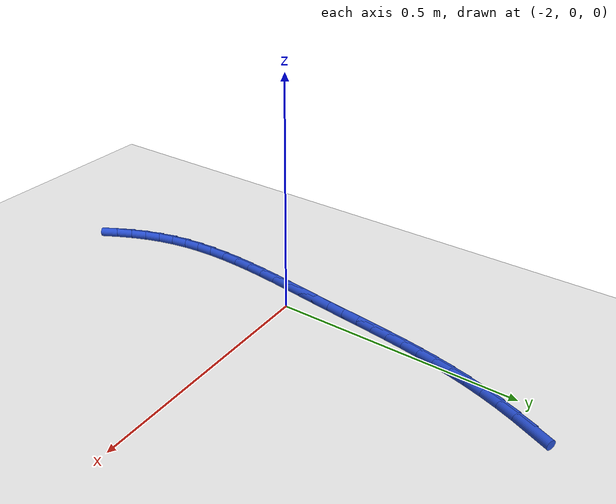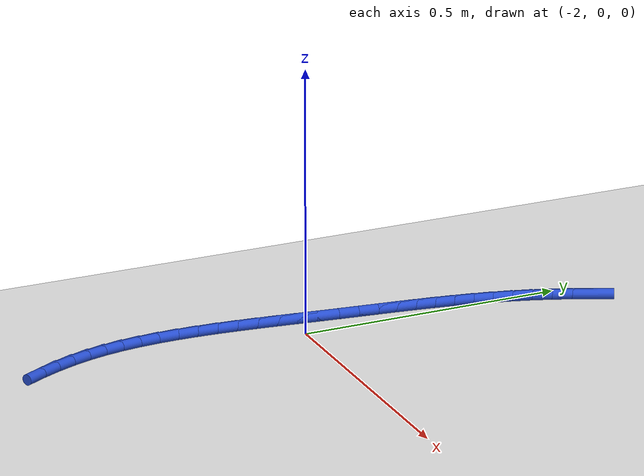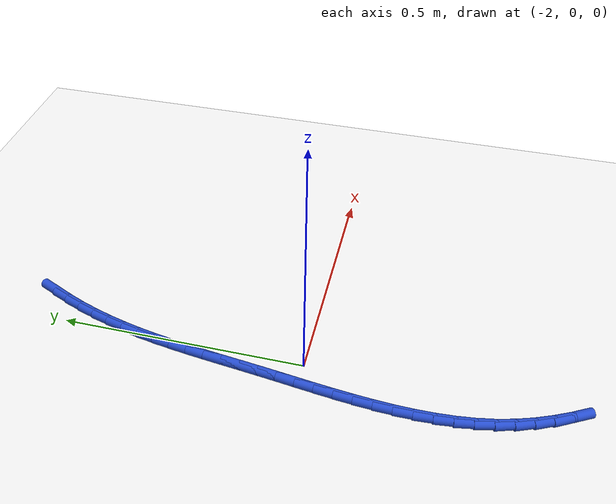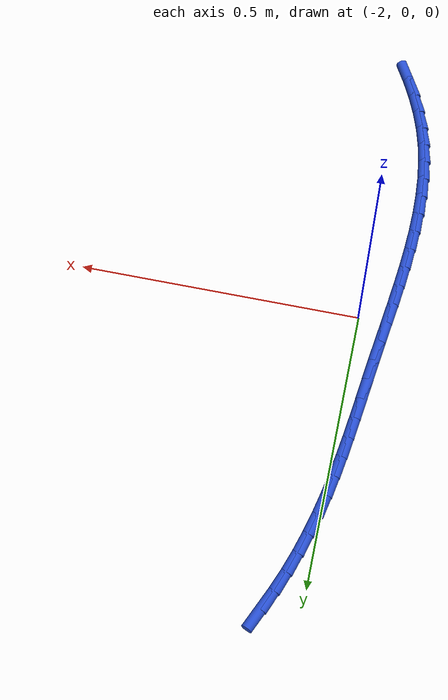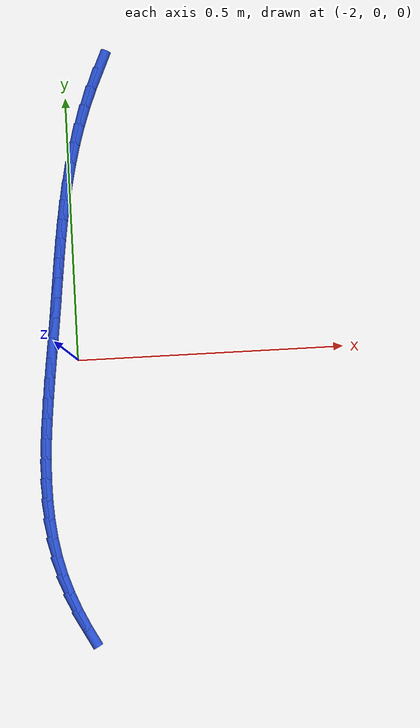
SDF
<sdf version="1.6">
 <world name="default">
  <model name="ground_plane">
   <static>1</static>
   <link name="link">
    <collision name="collision">
     <geometry><plane><normal>0 0 1</normal><size>100 100</size></plane></geometry>
     <surface><friction><ode><mu>100</mu><mu2>50</mu2></ode></friction></surface>
    </collision>
    <visual name="visual">
     <cast_shadows>0</cast_shadows>
     <geometry><plane><normal>0 0 1</normal><size>100 100</size></plane></geometry>
     <material>
      <script><uri>file://media/materials/scripts/gazebo.material</uri><name>Gazebo/WhiteGlow</name></script>
     </material>
    </visual>
   </link>
  </model>
  <model name="line">
   <link name="link_75">
    <pose>-1.934020386473301 0.5490654927640242 0.01 0 1.57 1.153676875618911</pose>
    <collision name="collision">
     <geometry><cylinder><radius>0.01</radius><length>0.08</length></cylinder></geometry>
    </collision>
    <visual name="visual">
     <material>
      <script><name>Gazebo/Blue</name><uri>file://media/materials/scripts/gazebo.material</uri></script>
     </material>
     <geometry><cylinder><radius>0.01</radius><length>0.08</length></cylinder></geometry>
    </visual>
   </link>
   <link name="link_76">
    <pose>-1.9492658236976375 0.5146608855714893 0.01 0 1.57 1.1976025449882788</pose>
    <collision name="collision">
     <geometry><cylinder><radius>0.01</radius><length>0.08</length></cylinder></geometry>
    </collision>
    <visual name="visual">
     <material>
      <script><name>Gazebo/Blue</name><uri>file://media/materials/scripts/gazebo.material</uri></script>
     </material>
     <geometry><cylinder><radius>0.01</radius><length>0.08</length></cylinder></geometry>
    </visual>
   </link>
   <link name="link_77">
    <pose>-1.9629806317784444 0.47963320316125385 0.01 0 1.57 1.2397136691446025</pose>
    <collision name="collision">
     <geometry><cylinder><radius>0.01</radius><length>0.08</length></cylinder></geometry>
    </collision>
    <visual name="visual">
     <material>
      <script><name>Gazebo/Blue</name><uri>file://media/materials/scripts/gazebo.material</uri></script>
     </material>
     <geometry><cylinder><radius>0.01</radius><length>0.08</length></cylinder></geometry>
    </visual>
   </link>
   <link name="link_78">
    <pose>-1.9751704966750043 0.4441702300543123 0.01 0 1.57 1.2804062836455032</pose>
    <collision name="collision">
     <geometry><cylinder><radius>0.01</radius><length>0.08</length></cylinder></geometry>
    </collision>
    <visual name="visual">
     <material>
      <script><name>Gazebo/Blue</name><uri>file://media/materials/scripts/gazebo.material</uri></script>
     </material>
     <geometry><cylinder><radius>0.01</radius><length>0.08</length></cylinder></geometry>
    </visual>
   </link>
   <link name="link_79">
    <pose>-1.985842618885981 0.4084581183225822 0.01 0 1.57 1.3187205217122795</pose>
    <collision name="collision">
     <geometry><cylinder><radius>0.01</radius><length>0.08</length></cylinder></geometry>
    </collision>
    <visual name="visual">
     <material>
      <script><name>Gazebo/Blue</name><uri>file://media/materials/scripts/gazebo.material</uri></script>
     </material>
     <geometry><cylinder><radius>0.01</radius><length>0.08</length></cylinder></geometry>
    </visual>
   </link>
   <link name="link_80">
    <pose>-1.9950768023687289 0.37260476426573963 0.01 0 1.57 1.352666114296725</pose>
    <collision name="collision">
     <geometry><cylinder><radius>0.01</radius><length>0.08</length></cylinder></geometry>
    </collision>
    <visual name="visual">
     <material>
      <script><name>Gazebo/Blue</name><uri>file://media/materials/scripts/gazebo.material</uri></script>
     </material>
     <geometry><cylinder><radius>0.01</radius><length>0.08</length></cylinder></geometry>
    </visual>
   </link>
   <link name="link_81">
    <pose>-2.003055977129139 0.336606909581294 0.01 0 1.57 1.3818153010414362</pose>
    <collision name="collision">
     <geometry><cylinder><radius>0.01</radius><length>0.08</length></cylinder></geometry>
    </collision>
    <visual name="visual">
     <material>
      <script><name>Gazebo/Blue</name><uri>file://media/materials/scripts/gazebo.material</uri></script>
     </material>
     <geometry><cylinder><radius>0.01</radius><length>0.08</length></cylinder></geometry>
    </visual>
   </link>
   <link name="link_82">
    <pose>-2.0099709288911356 0.3004528286665403 0.01 0 1.57 1.4059733385864723</pose>
    <collision name="collision">
     <geometry><cylinder><radius>0.01</radius><length>0.08</length></cylinder></geometry>
    </collision>
    <visual name="visual">
     <material>
      <script><name>Gazebo/Blue</name><uri>file://media/materials/scripts/gazebo.material</uri></script>
     </material>
     <geometry><cylinder><radius>0.01</radius><length>0.08</length></cylinder></geometry>
    </visual>
   </link>
   <link name="link_83">
    <pose>-2.016012443378644 0.26413079591877364 0.01 0 1.57 1.4250263772896725</pose>
    <collision name="collision">
     <geometry><cylinder><radius>0.01</radius><length>0.08</length></cylinder></geometry>
    </collision>
    <visual name="visual">
     <material>
      <script><name>Gazebo/Blue</name><uri>file://media/materials/scripts/gazebo.material</uri></script>
     </material>
     <geometry><cylinder><radius>0.01</radius><length>0.08</length></cylinder></geometry>
    </visual>
   </link>
   <link name="link_84">
    <pose>-2.021371306315587 0.22762908573529 0.01 0 1.57 1.4389254744456474</pose>
    <collision name="collision">
     <geometry><cylinder><radius>0.01</radius><length>0.08</length></cylinder></geometry>
    </collision>
    <visual name="visual">
     <material>
      <script><name>Gazebo/Blue</name><uri>file://media/materials/scripts/gazebo.material</uri></script>
     </material>
     <geometry><cylinder><radius>0.01</radius><length>0.08</length></cylinder></geometry>
    </visual>
   </link>
   <link name="link_85">
    <pose>-2.0262383034258917 0.1909359725133843 0.01 0 1.57 1.4476721013192877</pose>
    <collision name="collision">
     <geometry><cylinder><radius>0.01</radius><length>0.08</length></cylinder></geometry>
    </collision>
    <visual name="visual">
     <material>
      <script><name>Gazebo/Blue</name><uri>file://media/materials/scripts/gazebo.material</uri></script>
     </material>
     <geometry><cylinder><radius>0.01</radius><length>0.08</length></cylinder></geometry>
    </visual>
   </link>
   <link name="link_86">
    <pose>-2.0308042204334806 0.1540397306503525 0.01 0 1.57 1.4513065414576376</pose>
    <collision name="collision">
     <geometry><cylinder><radius>0.01</radius><length>0.08</length></cylinder></geometry>
    </collision>
    <visual name="visual">
     <material>
      <script><name>Gazebo/Blue</name><uri>file://media/materials/scripts/gazebo.material</uri></script>
     </material>
     <geometry><cylinder><radius>0.01</radius><length>0.08</length></cylinder></geometry>
    </visual>
   </link>
   <link name="link_87">
    <pose>-2.0352598430622795 0.11692863454348984 0.01 0 1.57 1.4498998751579664</pose>
    <collision name="collision">
     <geometry><cylinder><radius>0.01</radius><length>0.08</length></cylinder></geometry>
    </collision>
    <visual name="visual">
     <material>
      <script><name>Gazebo/Blue</name><uri>file://media/materials/scripts/gazebo.material</uri></script>
     </material>
     <geometry><cylinder><radius>0.01</radius><length>0.08</length></cylinder></geometry>
    </visual>
   </link>
   <link name="link_88">
    <pose>-2.0397959570362123 0.07959095859009134 0.01 0 1.57 1.4440823501617155</pose>
    <collision name="collision">
     <geometry><cylinder><radius>0.01</radius><length>0.08</length></cylinder></geometry>
    </collision>
    <visual name="visual">
     <material>
      <script><name>Gazebo/Blue</name><uri>file://media/materials/scripts/gazebo.material</uri></script>
     </material>
     <geometry><cylinder><radius>0.01</radius><length>0.08</length></cylinder></geometry>
    </visual>
   </link>
   <link name="link_89">
    <pose>-2.044582444157731 0.04201939927456838 0.01 0 1.57 1.4401556864056326</pose>
    <collision name="collision">
     <geometry><cylinder><radius>0.01</radius><length>0.08</length></cylinder></geometry>
    </collision>
    <visual name="visual">
     <material>
      <script><name>Gazebo/Blue</name><uri>file://media/materials/scripts/gazebo.material</uri></script>
     </material>
     <geometry><cylinder><radius>0.01</radius><length>0.08</length></cylinder></geometry>
    </visual>
   </link>
   <link name="link_90">
    <pose>-2.0495438013263647 0.00425856264379866 0.01 0 1.57 1.4420940667489086</pose>
    <collision name="collision">
     <geometry><cylinder><radius>0.01</radius><length>0.08</length></cylinder></geometry>
    </collision>
    <visual name="visual">
     <material>
      <script><name>Gazebo/Blue</name><uri>file://media/materials/scripts/gazebo.material</uri></script>
     </material>
     <geometry><cylinder><radius>0.01</radius><length>0.08</length></cylinder></geometry>
    </visual>
   </link>
   <link name="link_91">
    <pose>-2.0544450766395994 -0.03361321490986453 0.01 0 1.57 1.4499352415066247</pose>
    <collision name="collision">
     <geometry><cylinder><radius>0.01</radius><length>0.08</length></cylinder></geometry>
    </collision>
    <visual name="visual">
     <material>
      <script><name>Gazebo/Blue</name><uri>file://media/materials/scripts/gazebo.material</uri></script>
     </material>
     <geometry><cylinder><radius>0.01</radius><length>0.08</length></cylinder></geometry>
    </visual>
   </link>
   <link name="link_92">
    <pose>-2.0590486092096665 -0.07151702392605319 0.01 0 1.57 1.4637465171240083</pose>
    <collision name="collision">
     <geometry><cylinder><radius>0.01</radius><length>0.08</length></cylinder></geometry>
    </collision>
    <visual name="visual">
     <material>
      <script><name>Gazebo/Blue</name><uri>file://media/materials/scripts/gazebo.material</uri></script>
     </material>
     <geometry><cylinder><radius>0.01</radius><length>0.08</length></cylinder></geometry>
    </visual>
   </link>
   <link name="link_93">
    <pose>-2.063116738148795 -0.10937395494439707 0.01 0 1.57 1.483687228569123</pose>
    <collision name="collision">
     <geometry><cylinder><radius>0.01</radius><length>0.08</length></cylinder></geometry>
    </collision>
    <visual name="visual">
     <material>
      <script><name>Gazebo/Blue</name><uri>file://media/materials/scripts/gazebo.material</uri></script>
     </material>
     <geometry><cylinder><radius>0.01</radius><length>0.08</length></cylinder></geometry>
    </visual>
   </link>
   <link name="link_94">
    <pose>-2.066411802569217 -0.1471050985045282 0.01 0 1.57 1.5099985711021897</pose>
    <collision name="collision">
     <geometry><cylinder><radius>0.01</radius><length>0.08</length></cylinder></geometry>
    </collision>
    <visual name="visual">
     <material>
      <script><name>Gazebo/Blue</name><uri>file://media/materials/scripts/gazebo.material</uri></script>
     </material>
     <geometry><cylinder><radius>0.01</radius><length>0.08</length></cylinder></geometry>
    </visual>
   </link>
   <link name="link_95">
    <pose>-2.068696141583162 -0.18463154514607782 0.01 0 1.57 1.5429873398642462</pose>
    <collision name="collision">
     <geometry><cylinder><radius>0.01</radius><length>0.08</length></cylinder></geometry>
    </collision>
    <visual name="visual">
     <material>
      <script><name>Gazebo/Blue</name><uri>file://media/materials/scripts/gazebo.material</uri></script>
     </material>
     <geometry><cylinder><radius>0.01</radius><length>0.08</length></cylinder></geometry>
    </visual>
   </link>
   <link name="link_96">
    <pose>-2.069732094302861 -0.22187438540867713 0.01 0 1.57 -1.558592743303529</pose>
    <collision name="collision">
     <geometry><cylinder><radius>0.01</radius><length>0.08</length></cylinder></geometry>
    </collision>
    <visual name="visual">
     <material>
      <script><name>Gazebo/Blue</name><uri>file://media/materials/scripts/gazebo.material</uri></script>
     </material>
     <geometry><cylinder><radius>0.01</radius><length>0.08</length></cylinder></geometry>
    </visual>
   </link>
   <link name="link_97">
    <pose>-2.0692819998405443 -0.25875470983195736 0.01 0 1.57 -1.5112108472369834</pose>
    <collision name="collision">
     <geometry><cylinder><radius>0.01</radius><length>0.08</length></cylinder></geometry>
    </collision>
    <visual name="visual">
     <material>
      <script><name>Gazebo/Blue</name><uri>file://media/materials/scripts/gazebo.material</uri></script>
     </material>
     <geometry><cylinder><radius>0.01</radius><length>0.08</length></cylinder></geometry>
    </visual>
   </link>
   <link name="link_98">
    <pose>-2.0671081973084426 -0.29519360895555063 0.01 0 1.57 -1.4561746483203317</pose>
    <collision name="collision">
     <geometry><cylinder><radius>0.01</radius><length>0.08</length></cylinder></geometry>
    </collision>
    <visual name="visual">
     <material>
      <script><name>Gazebo/Blue</name><uri>file://media/materials/scripts/gazebo.material</uri></script>
     </material>
     <geometry><cylinder><radius>0.01</radius><length>0.08</length></cylinder></geometry>
    </visual>
   </link>
   <link name="link_99">
    <pose>-2.062973025818786 -0.33111217331908654 0.01 0 1.57 -1.393341803865478</pose>
    <collision name="collision">
     <geometry><cylinder><radius>0.01</radius><length>0.08</length></cylinder></geometry>
    </collision>
    <visual name="visual">
     <material>
      <script><name>Gazebo/Blue</name><uri>file://media/materials/scripts/gazebo.material</uri></script>
     </material>
     <geometry><cylinder><radius>0.01</radius><length>0.08</length></cylinder></geometry>
    </visual>
   </link>
   <link name="link_100">
    <pose>-2.0566388244838065 -0.3664314934621972 0.01 0 1.57 -1.3229463715000118</pose>
    <collision name="collision">
     <geometry><cylinder><radius>0.01</radius><length>0.08</length></cylinder></geometry>
    </collision>
    <visual name="visual">
     <material>
      <script><name>Gazebo/Blue</name><uri>file://media/materials/scripts/gazebo.material</uri></script>
     </material>
     <geometry><cylinder><radius>0.01</radius><length>0.08</length></cylinder></geometry>
    </visual>
   </link>
   <link name="link_101">
    <pose>-2.047872448921902 -0.40107394927353773 0.01 0 1.57 -1.2507120236216418</pose>
    <collision name="collision">
     <geometry><cylinder><radius>0.01</radius><length>0.08</length></cylinder></geometry>
    </collision>
    <visual name="visual">
     <material>
      <script><name>Gazebo/Blue</name><uri>file://media/materials/scripts/gazebo.material</uri></script>
     </material>
     <geometry><cylinder><radius>0.01</radius><length>0.08</length></cylinder></geometry>
    </visual>
   </link>
   <link name="link_102">
    <pose>-2.0366220112436575 -0.43501366481580667 0.01 0 1.57 -1.1841945884961187</pose>
    <collision name="collision">
     <geometry><cylinder><radius>0.01</radius><length>0.08</length></cylinder></geometry>
    </collision>
    <visual name="visual">
     <material>
      <script><name>Gazebo/Blue</name><uri>file://media/materials/scripts/gazebo.material</uri></script>
     </material>
     <geometry><cylinder><radius>0.01</radius><length>0.08</length></cylinder></geometry>
    </visual>
   </link>
   <link name="link_103">
    <pose>-2.023074420252306 -0.46829293460715243 0.01 0 1.57 -1.1242230983544907</pose>
    <collision name="collision">
     <geometry><cylinder><radius>0.01</radius><length>0.08</length></cylinder></geometry>
    </collision>
    <visual name="visual">
     <material>
      <script><name>Gazebo/Blue</name><uri>file://media/materials/scripts/gazebo.material</uri></script>
     </material>
     <geometry><cylinder><radius>0.01</radius><length>0.08</length></cylinder></geometry>
    </visual>
   </link>
   <link name="link_104">
    <pose>-2.0074328842023843 -0.5009587062495081 0.01 0 1.57 -1.0708829822605523</pose>
    <collision name="collision">
     <geometry><cylinder><radius>0.01</radius><length>0.08</length></cylinder></geometry>
    </collision>
    <visual name="visual">
     <material>
      <script><name>Gazebo/Blue</name><uri>file://media/materials/scripts/gazebo.material</uri></script>
     </material>
     <geometry><cylinder><radius>0.01</radius><length>0.08</length></cylinder></geometry>
    </visual>
   </link>
  </model>
 </world>
</sdf>
